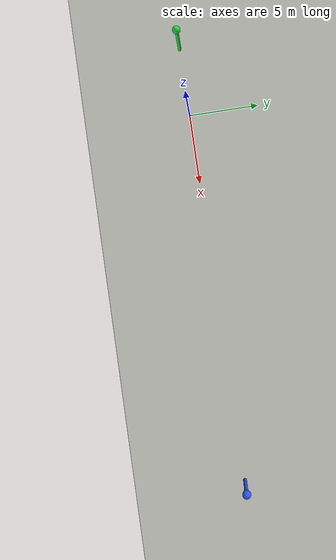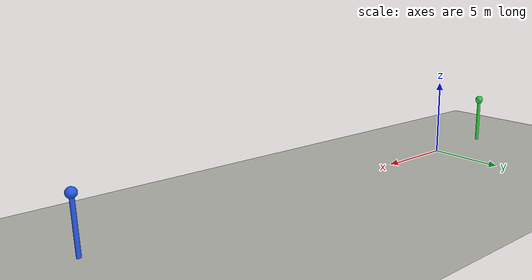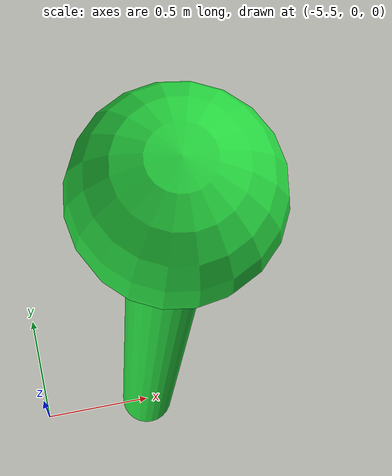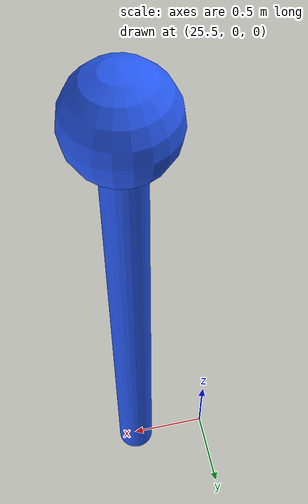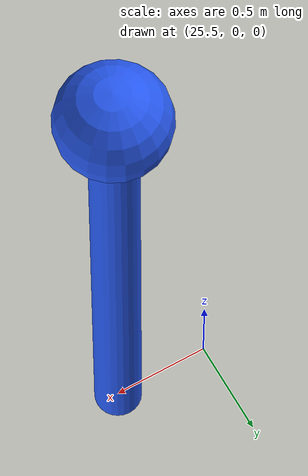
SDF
<sdf version="1.9">
 <world name="warehouse">
  <physics name="1ms" type="ignored">
   <max_step_size>0.001</max_step_size>
   <real_time_factor>0</real_time_factor>
   <real_time_update_rate>0</real_time_update_rate>
  </physics>
  <plugin filename="gz-sim-physics-system" name="gz::sim::systems::Physics"/>
  <plugin filename="gz-sim-user-commands-system" name="gz::sim::systems::UserCommands"/>
  <plugin filename="gz-sim-scene-broadcaster-system" name="gz::sim::systems::SceneBroadcaster"/>
  <plugin filename="gz-sim-contact-system" name="gz::sim::systems::Contact"/>
  <plugin filename="gz-sim-imu-system" name="gz::sim::systems::Imu"/>
  <plugin filename="gz-sim-sensors-system" name="gz::sim::systems::Sensors">
   <render_engine>ogre2</render_engine>
  </plugin>
  <gravity>0 0 -9.8</gravity>
  <light type="directional" name="sun">
   <pose>0 0 10 0 0 0</pose>
   <diffuse>0.8 0.8 0.8 1</diffuse>
   <specular>0.2 0.2 0.2 1</specular>
   <direction>-0.5 0.1 -0.9</direction>
  </light>
  <model name="ground_plane">
   <static>true</static>
   <link name="link">
    <collision name="collision">
     <geometry><plane><normal>0 0 1</normal><size>80 40</size></plane></geometry>
    </collision>
    <visual name="visual">
     <geometry><plane><normal>0 0 1</normal><size>80 40</size></plane></geometry>
     <material><ambient>0.75 0.75 0.72 1</ambient><diffuse>0.75 0.75 0.72 1</diffuse></material>
    </visual>
   </link>
  </model>
  <model name="goal_west">
   <static>true</static>
   <pose>-5.000 0.000 0 0 0 0</pose>
   <link name="link">
    <visual name="mast">
     <pose>0 0 1.5 0 0 0</pose>
     <geometry><cylinder><radius>0.12</radius><length>3.0</length></cylinder></geometry>
     <material>
      <ambient>0.15 0.85 0.25 1</ambient>
      <diffuse>0.15 0.85 0.25 1</diffuse>
      <emissive>0.06 0.34 0.1 1</emissive>
     </material>
    </visual>
    <visual name="ball">
     <pose>0 0 3.15 0 0 0</pose>
     <geometry><sphere><radius>0.28</radius></sphere></geometry>
     <material>
      <ambient>0.15 0.85 0.25 1</ambient>
      <diffuse>0.15 0.85 0.25 1</diffuse>
      <emissive>0.075 0.425 0.125 1</emissive>
     </material>
    </visual>
   </link>
  </model>
  <model name="goal_east">
   <static>true</static>
   <pose>26.000 0.000 0 0 0 0</pose>
   <link name="link">
    <visual name="mast">
     <pose>0 0 1.5 0 0 0</pose>
     <geometry><cylinder><radius>0.12</radius><length>3.0</length></cylinder></geometry>
     <material>
      <ambient>0.15 0.35 0.95 1</ambient>
      <diffuse>0.15 0.35 0.95 1</diffuse>
      <emissive>0.06 0.13999999999999999 0.38 1</emissive>
     </material>
    </visual>
    <visual name="ball">
     <pose>0 0 3.15 0 0 0</pose>
     <geometry><sphere><radius>0.28</radius></sphere></geometry>
     <material>
      <ambient>0.15 0.35 0.95 1</ambient>
      <diffuse>0.15 0.35 0.95 1</diffuse>
      <emissive>0.075 0.175 0.475 1</emissive>
     </material>
    </visual>
   </link>
  </model>
 </world>
</sdf>
